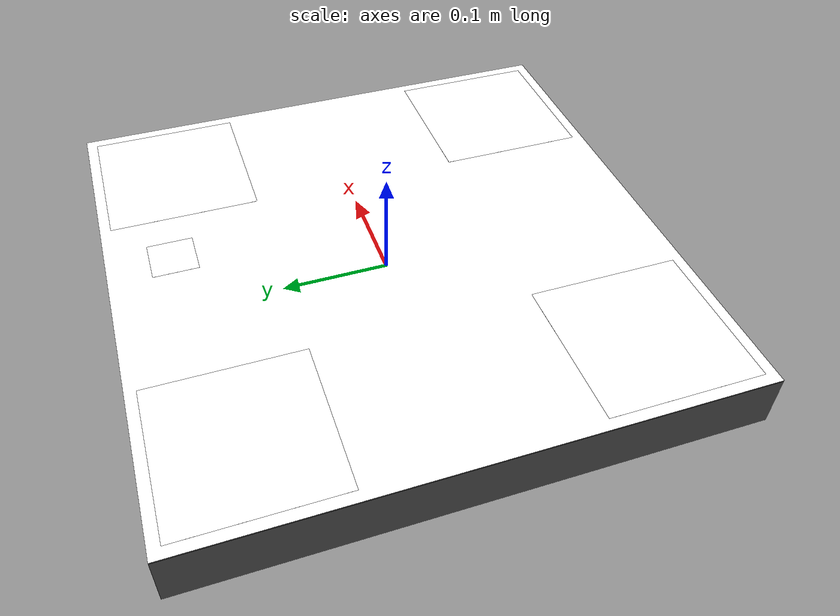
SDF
<?xml version="1.0" encoding="UTF-8"?>
<sdf version="1.9">
  <model name="barge">
    <link name="platform_link">
      <visual name="platform_visual">
        <geometry>
          <box>
            <size>0.5 0.5 0.05</size>
          </box>
        </geometry>
        <material>
          <ambient>0.3 0.3 0.3 1</ambient>
          <diffuse>0.3 0.3 0.3 1</diffuse>
          <specular>0.1 0.1 0.1 1</specular>
        </material>
      </visual>
      <collision name="platform_collision">
        <geometry>
          <box>
            <size>0.5 0.5 0.1</size>
          </box>
        </geometry>
      </collision>
      <pose>0 0 0 0 0 0</pose>
      <inertial>
        <mass>10000</mass>
        <inertia>
          <ixx>10000</ixx>
          <iyy>10000</iyy>
          <izz>10000</izz>
        </inertia>
      </inertial>

      <!-- GPS tracking the barge -->
      <sensor name="navsat_sensor" type="navsat">
        <gz_frame_id>platform_link</gz_frame_id>
        <always_on>1</always_on>
        <update_rate>30</update_rate>
      </sensor>

    </link>

    <plugin
      filename="libBargeController.so"
      name="custom::BargeController">
      <link_name>platform_link</link_name>
    </plugin>

    <!-- ArucoTag model for good practice -->
    <include>
      <uri>model://arucotag</uri>
      <name>arucotag_model</name>
      <pose>0 0 0.026 0 0 0</pose>
    </include>

    <!-- Fixed joint -->
    <joint name="fixed_joint_to_arucotag" type="fixed">
      <parent>platform_link</parent>   <!-- A link in the parent model -->
      <child>arucotag_model::base</child> <!-- Link inside child model -->
    </joint>

    <!-- Pose publisher -->
    <plugin
      filename="gz-sim-odometry-publisher-system"
      name="gz::sim::systems::OdometryPublisher">
      <odom_publish_frequency>50</odom_publish_frequency>
      <dimensions>3</dimensions>
      <odom_topic>barge/odom</odom_topic>
      <odom_covariance_topic>barge/odom_covariance</odom_covariance_topic>
    </plugin>

    <plugin
    	filename="gz-sim-pose-publisher-system"
    	name="gz::sim::systems::PosePublisher">
    	<publish_link_pose>true</publish_link_pose>
    	<publish_collision_pose>false</publish_collision_pose>
      	<publish_visual_pose>false</publish_visual_pose>
      	<publish_nested_model_pose>false</publish_nested_model_pose>
    </plugin>

  </model>
</sdf>

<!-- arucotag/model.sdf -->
<sdf version='1.9'>
  <model name='arucotag'>
    <static>true</static>
    <pose>0 0 0.001 0 0 0</pose>
    <link name='base'>
      <visual name='background_visual'>
        <geometry>
          <plane>
            <normal>0 0 1</normal>
            <size>0.5 0.5</size>
          </plane>
        </geometry>
        <material>
          <diffuse>1 1 1 1</diffuse>
          <specular>0.2 0.2 0.2 1</specular>
        </material>
      </visual>
      <visual name='tag_0_visual'>
        <pose>0.17 0.17 0.0002 0 0 0</pose>
        <geometry>
          <plane>
            <normal>0 0 1</normal>
            <size>0.14 0.14</size>
          </plane>
        </geometry>
        <material>
          <diffuse>1 1 1 1</diffuse>
          <specular>0.4 0.4 0.4 1</specular>
          <pbr>
            <metal>
              <albedo_map>model://arucotag/aruco_0.png</albedo_map>
            </metal>
          </pbr>
        </material>
      </visual>
      <visual name='tag_1_visual'>
        <pose>-0.17 0.17 0.0002 0 0 0</pose>
        <geometry>
          <plane>
            <normal>0 0 1</normal>
            <size>0.14 0.14</size>
          </plane>
        </geometry>
        <material>
          <diffuse>1 1 1 1</diffuse>
          <specular>0.4 0.4 0.4 1</specular>
          <pbr>
            <metal>
              <albedo_map>model://arucotag/aruco_1.png</albedo_map>
            </metal>
          </pbr>
        </material>
      </visual>
      <visual name='tag_2_visual'>
        <pose>-0.17 -0.17 0.0002 0 0 0</pose>
        <geometry>
          <plane>
            <normal>0 0 1</normal>
            <size>0.14 0.14</size>
          </plane>
        </geometry>
        <material>
          <diffuse>1 1 1 1</diffuse>
          <specular>0.4 0.4 0.4 1</specular>
          <pbr>
            <metal>
              <albedo_map>model://arucotag/aruco_2.png</albedo_map>
            </metal>
          </pbr>
        </material>
      </visual>
      <visual name='tag_3_visual'>
        <pose>0.17 -0.17 0.0002 0 0 0</pose>
        <geometry>
          <plane>
            <normal>0 0 1</normal>
            <size>0.14 0.14</size>
          </plane>
        </geometry>
        <material>
          <diffuse>1 1 1 1</diffuse>
          <specular>0.4 0.4 0.4 1</specular>
          <pbr>
            <metal>
              <albedo_map>model://arucotag/aruco_3.png</albedo_map>
            </metal>
          </pbr>
        </material>
      </visual>
      <visual name='tag_4_visual'>
        <pose>0.0 0.11 0.0002 0 0 0</pose>
        <geometry>
          <plane>
            <normal>0 0 1</normal>
            <size>0.07 0.07</size>
          </plane>
        </geometry>
        <material>
          <diffuse>1 1 1 1</diffuse>
          <specular>0.4 0.4 0.4 1</specular>
          <pbr>
            <metal>
              <albedo_map>model://arucotag/aruco_4.png</albedo_map>
            </metal>
          </pbr>
        </material>
      </visual>
      <visual name='tag_5_visual'>
        <pose>-0.11 0.0 0.0002 0 0 0</pose>
        <geometry>
          <plane>
            <normal>0 0 1</normal>
            <size>0.07 0.07</size>
          </plane>
        </geometry>
        <material>
          <diffuse>1 1 1 1</diffuse>
          <specular>0.4 0.4 0.4 1</specular>
          <pbr>
            <metal>
              <albedo_map>model://arucotag/aruco_5.png</albedo_map>
            </metal>
          </pbr>
        </material>
      </visual>
      <visual name='tag_6_visual'>
        <pose>0.0 -0.11 0.0002 0 0 0</pose>
        <geometry>
          <plane>
            <normal>0 0 1</normal>
            <size>0.07 0.07</size>
          </plane>
        </geometry>
        <material>
          <diffuse>1 1 1 1</diffuse>
          <specular>0.4 0.4 0.4 1</specular>
          <pbr>
            <metal>
              <albedo_map>model://arucotag/aruco_6.png</albedo_map>
            </metal>
          </pbr>
        </material>
      </visual>
      <visual name='tag_7_visual'>
        <pose>0.11 0.0 0.0002 0 0 0</pose>
        <geometry>
          <plane>
            <normal>0 0 1</normal>
            <size>0.07 0.07</size>
          </plane>
        </geometry>
        <material>
          <diffuse>1 1 1 1</diffuse>
          <specular>0.4 0.4 0.4 1</specular>
          <pbr>
            <metal>
              <albedo_map>model://arucotag/aruco_7.png</albedo_map>
            </metal>
          </pbr>
        </material>
      </visual>
      <visual name='tag_8_visual'>
        <pose>0.0 0.045 0.0002 0 0 0</pose>
        <geometry>
          <plane>
            <normal>0 0 1</normal>
            <size>0.025 0.025</size>
          </plane>
        </geometry>
        <material>
          <diffuse>1 1 1 1</diffuse>
          <specular>0.4 0.4 0.4 1</specular>
          <pbr>
            <metal>
              <albedo_map>model://arucotag/aruco_8.png</albedo_map>
            </metal>
          </pbr>
        </material>
      </visual>
      <visual name='tag_9_visual'>
        <pose>-0.045 0.0 0.0002 0 0 0</pose>
        <geometry>
          <plane>
            <normal>0 0 1</normal>
            <size>0.025 0.025</size>
          </plane>
        </geometry>
        <material>
          <diffuse>1 1 1 1</diffuse>
          <specular>0.4 0.4 0.4 1</specular>
          <pbr>
            <metal>
              <albedo_map>model://arucotag/aruco_9.png</albedo_map>
            </metal>
          </pbr>
        </material>
      </visual>
      <visual name='tag_10_visual'>
        <pose>0.0 -0.045 0.0002 0 0 0</pose>
        <geometry>
          <plane>
            <normal>0 0 1</normal>
            <size>0.025 0.025</size>
          </plane>
        </geometry>
        <material>
          <diffuse>1 1 1 1</diffuse>
          <specular>0.4 0.4 0.4 1</specular>
          <pbr>
            <metal>
              <albedo_map>model://arucotag/aruco_10.png</albedo_map>
            </metal>
          </pbr>
        </material>
      </visual>
      <visual name='tag_11_visual'>
        <pose>0.045 0.0 0.0002 0 0 0</pose>
        <geometry>
          <plane>
            <normal>0 0 1</normal>
            <size>0.025 0.025</size>
          </plane>
        </geometry>
        <material>
          <diffuse>1 1 1 1</diffuse>
          <specular>0.4 0.4 0.4 1</specular>
          <pbr>
            <metal>
              <albedo_map>model://arucotag/aruco_11.png</albedo_map>
            </metal>
          </pbr>
        </material>
      </visual>
      <visual name='tag_12_visual'>
        <pose>0.0 0.0 0.0002 0 0 0</pose>
        <geometry>
          <plane>
            <normal>0 0 1</normal>
            <size>0.018 0.018</size>
          </plane>
        </geometry>
        <material>
          <diffuse>1 1 1 1</diffuse>
          <specular>0.4 0.4 0.4 1</specular>
          <pbr>
            <metal>
              <albedo_map>model://arucotag/aruco_12.png</albedo_map>
            </metal>
          </pbr>
        </material>
      </visual>
      <!-- Small, flat drawing of the positive board axes.  It sits in the
           marker-free gap between the two large +Y-side tags. -->
      <visual name='board_positive_axes_drawing'>
        <pose>0.045 0.190 0.0005 0 0 0</pose>
        <geometry>
          <plane>
            <normal>0 0 1</normal>
            <size>0.042 0.042</size>
          </plane>
        </geometry>
        <material>
          <diffuse>1 1 1 1</diffuse>
          <specular>0 0 0 1</specular>
          <pbr>
            <metal>
              <albedo_map>model://arucotag/board_axes_xy.png</albedo_map>
            </metal>
          </pbr>
        </material>
      </visual>
    </link>
  </model>
</sdf>
